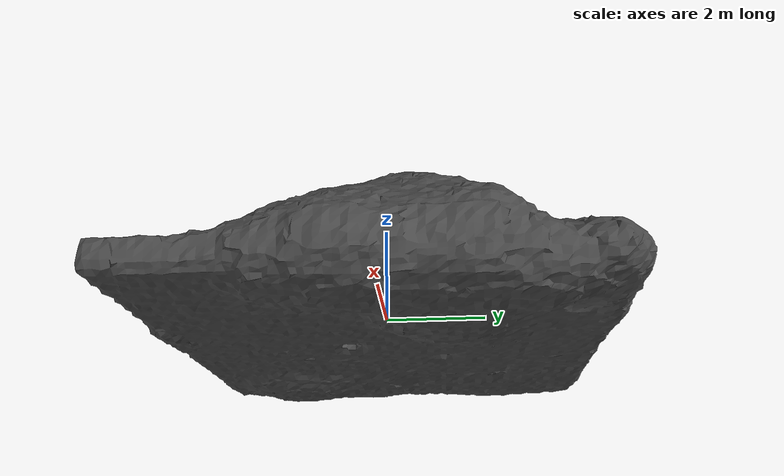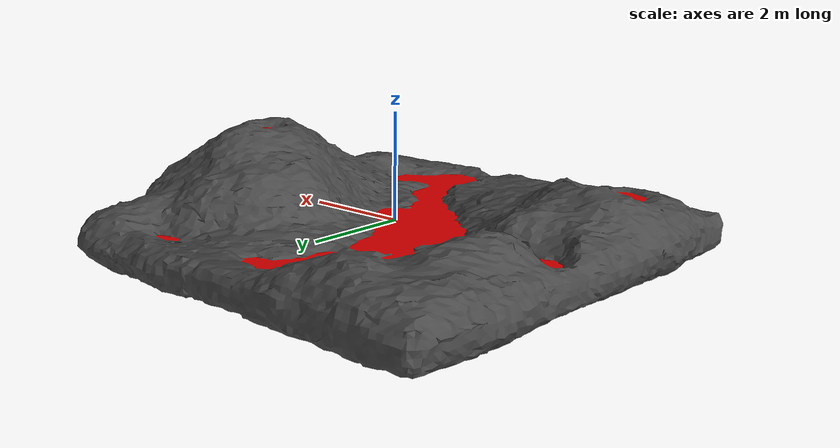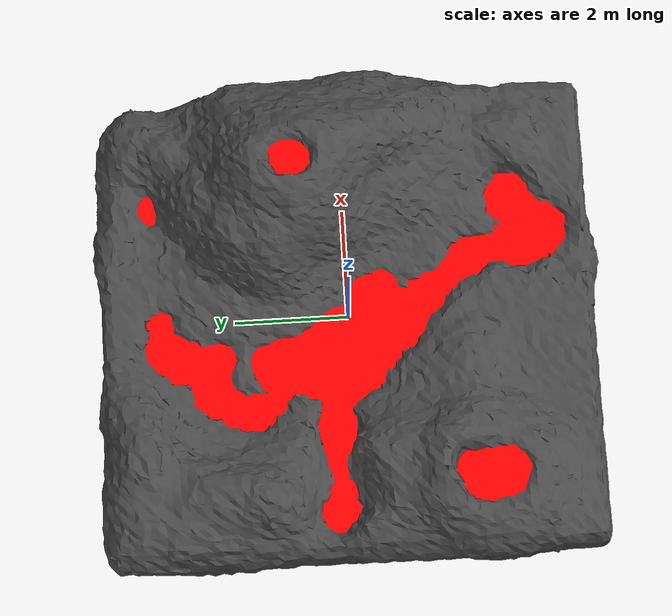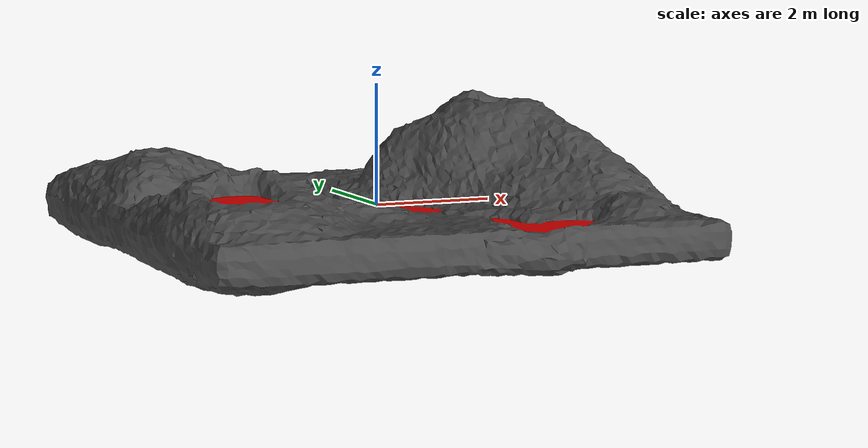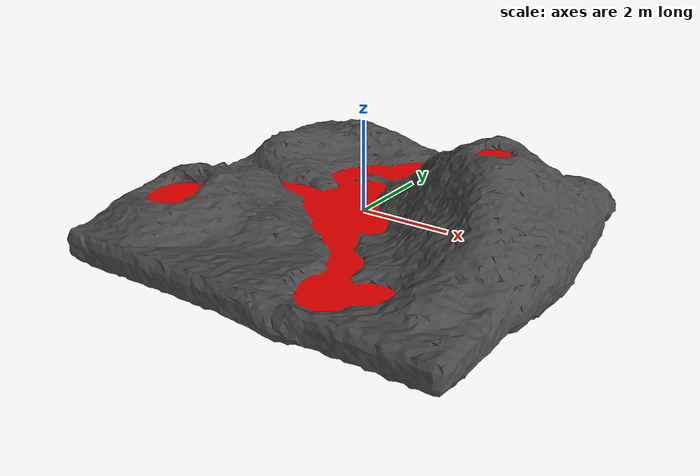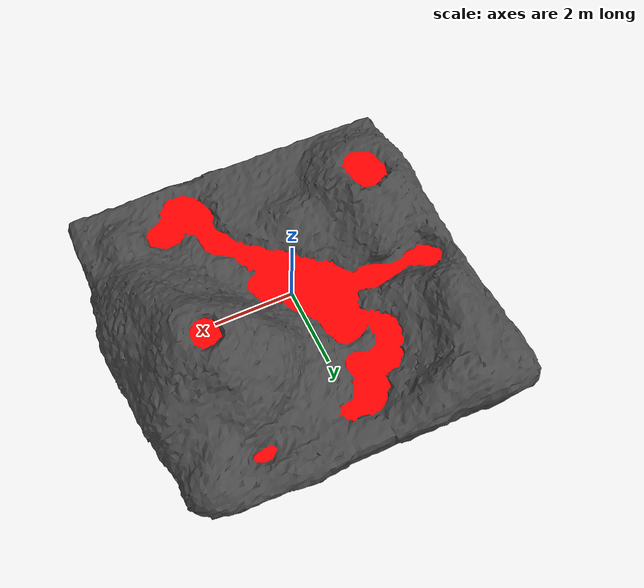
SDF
<?xml version="1.0" ?>
<sdf version="1.5">
  <model name="bod_volcano">
    <static>true</static>
    <link name="link">
	<pose>0 0 0 0 0 0</pose>
      <collision name="collision">
       <geometry>
          <mesh>
		  <uri>model://bod_volcano/meshes/NoBridge.dae</uri>
	     <scale>0.0335 0.0335 0.0335</scale>
	  </mesh>
        </geometry>
        <surface>
          <contact>
             <collide_bitmask>0xffff</collide_bitmask>
          </contact>
          <friction>
            <ode>
              <mu>100</mu>
              <mu2>50</mu2>
            </ode>
          </friction>
        </surface>
      </collision>
      <visual name="visual">
       <geometry>
          <mesh>
		  <uri>model://bod_volcano/meshes/NoBridge.dae</uri>
	  <scale>0.0335 0.0335 0.0335</scale>
	  </mesh>
        </geometry>
      </visual>
    </link>
  </model>
</sdf>
